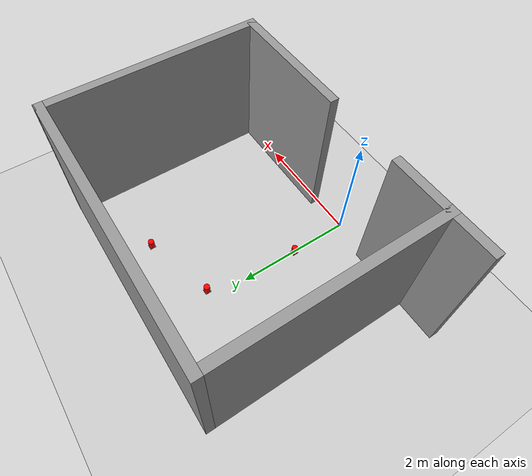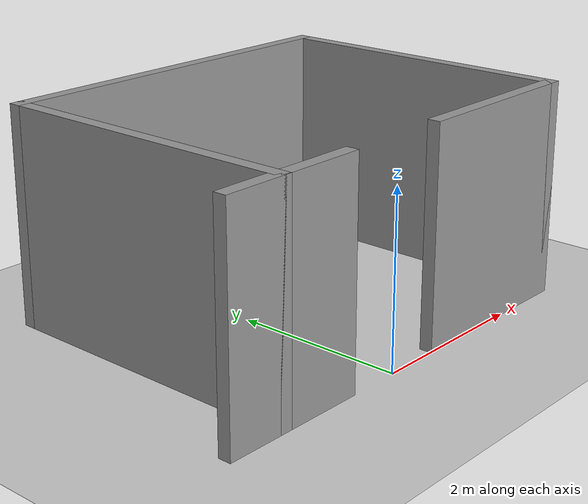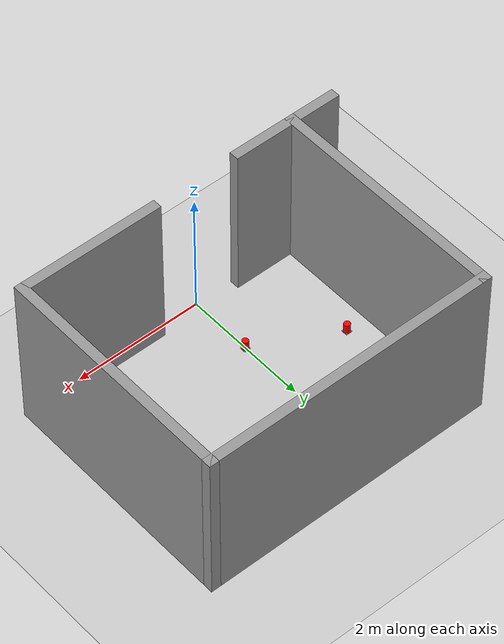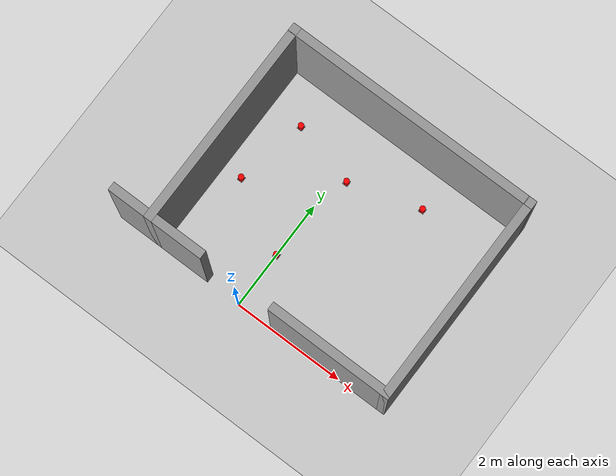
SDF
<sdf version="1.6">
 <world name="default">
  <light name="sun" type="directional">
   <pose>0 0 10 0 -0 0</pose>
   <diffuse>0.8 0.8 0.8 1</diffuse>
   <specular>0.1 0.1 0.1 1</specular>
   <attenuation>
    <range>1000</range>
    <constant>0.9</constant>
    <linear>0.01</linear>
    <quadratic>0.001</quadratic>
   </attenuation>
   <direction>-0.5 0.5 -1</direction>
  </light>
  <model name="ground_plane">
   <static>1</static>
   <link name="link">
    <collision name="collision">
     <geometry><plane><normal>0 0 1</normal><size>100 100</size></plane></geometry>
     <surface><friction><ode><mu>100</mu><mu2>50</mu2></ode></friction></surface>
    </collision>
    <visual name="visual">
     <cast_shadows>0</cast_shadows>
     <geometry><plane><normal>0 0 1</normal><size>100 100</size></plane></geometry>
     <material>
      <script><uri>file://media/materials/scripts/gazebo.material</uri><name>Gazebo/Grey</name></script>
     </material>
    </visual>
   </link>
  </model>
  <gravity>0 0 -9.8</gravity>
  <magnetic_field>6e-06 2.3e-05 -4.2e-05</magnetic_field>
  <atmosphere type="adiabatic"/>
  <physics name="default_physics" default="0" type="ode">
   <max_step_size>0.001</max_step_size>
   <real_time_factor>1</real_time_factor>
   <real_time_update_rate>1000</real_time_update_rate>
  </physics>
  <scene><ambient>0.4 0.4 0.4 1</ambient><background>0.7 0.7 0.7 1</background><shadows>1</shadows></scene>
  <spherical_coordinates>
   <surface_model>EARTH_WGS84</surface_model>
   <latitude_deg>0</latitude_deg>
   <longitude_deg>0</longitude_deg>
   <elevation>0</elevation>
   <heading_deg>0</heading_deg>
  </spherical_coordinates>
  <model name="VO_0">
   <link name="link_2">
    <pose>0 0 0.0625 0 -0 0</pose>
    <inertial>
     <mass>1</mass>
     <inertia><ixx>0.145833</ixx><ixy>0</ixy><ixz>0</ixz><iyy>0.145833</iyy><iyz>0</iyz><izz>0.125</izz></inertia>
    </inertial>
    <visual name="visual">
     <geometry><cylinder><radius>0.05</radius><length>0.15</length></cylinder></geometry>
     <material>
      <lighting>1</lighting>
      <script><uri>file://media/materials/scripts/gazebo.material</uri><name>Gazebo/Grey</name></script>
      <ambient>0.3 0.3 0.3 1</ambient>
      <diffuse>1 0 0 1</diffuse>
      <specular>0.01 0.01 0.01 1</specular>
      <emissive>0 0 0 1</emissive>
      <shader type="vertex"><normal_map>__default__</normal_map></shader>
     </material>
    </visual>
    <collision name="collision">
     <geometry><cylinder><radius>0.05</radius><length>0.15</length></cylinder></geometry>
     <surface>
      <friction>
       <ode><mu>1</mu><mu2>1</mu2><fdir1>0 0 0</fdir1><slip1>0</slip1><slip2>0</slip2></ode>
       <torsional>
        <coefficient>1</coefficient>
        <patch_radius>0</patch_radius>
        <surface_radius>0</surface_radius>
        <use_patch_radius>1</use_patch_radius>
        <ode><slip>0</slip></ode>
       </torsional>
      </friction>
      <bounce><restitution_coefficient>0</restitution_coefficient><threshold>1e+06</threshold></bounce>
      <contact>
       <collide_without_contact>0</collide_without_contact>
       <collide_without_contact_bitmask>1</collide_without_contact_bitmask>
       <collide_bitmask>1</collide_bitmask>
       <ode>
        <soft_cfm>0</soft_cfm>
        <soft_erp>0.2</soft_erp>
        <kp>1e+13</kp>
        <kd>1</kd>
        <max_vel>0.01</max_vel>
        <min_depth>0</min_depth>
       </ode>
       <bullet>
        <split_impulse>1</split_impulse>
        <split_impulse_penetration_threshold>-0.01</split_impulse_penetration_threshold>
        <soft_cfm>0</soft_cfm>
        <soft_erp>0.2</soft_erp>
        <kp>1e+13</kp>
        <kd>1</kd>
       </bullet>
      </contact>
     </surface>
    </collision>
   </link>
   <link name="link_3_clone">
    <pose>0 0 -0.0625 0 -0 0</pose>
    <inertial>
     <mass>1</mass>
     <inertia>
      <ixx>0.166667</ixx>
      <ixy>0</ixy>
      <ixz>0</ixz>
      <iyy>0.166667</iyy>
      <iyz>0</iyz>
      <izz>0.166667</izz>
     </inertia>
    </inertial>
    <visual name="visual">
     <geometry><box><size>0.1 0.1 0.1</size></box></geometry>
     <material>
      <lighting>1</lighting>
      <script><uri>file://media/materials/scripts/gazebo.material</uri><name>Gazebo/Grey</name></script>
      <ambient>0.3 0.3 0.3 1</ambient>
      <diffuse>0.7 0.7 0.7 1</diffuse>
      <specular>0.01 0.01 0.01 1</specular>
      <emissive>0 0 0 1</emissive>
      <shader type="vertex"><normal_map>__default__</normal_map></shader>
     </material>
    </visual>
    <collision name="collision">
     <geometry><box><size>0.1 0.1 0.1</size></box></geometry>
     <surface>
      <friction>
       <ode><mu>1</mu><mu2>1</mu2><fdir1>0 0 0</fdir1><slip1>0</slip1><slip2>0</slip2></ode>
       <torsional>
        <coefficient>1</coefficient>
        <patch_radius>0</patch_radius>
        <surface_radius>0</surface_radius>
        <use_patch_radius>1</use_patch_radius>
        <ode><slip>0</slip></ode>
       </torsional>
      </friction>
      <bounce><restitution_coefficient>0</restitution_coefficient><threshold>1e+06</threshold></bounce>
      <contact>
       <collide_without_contact>0</collide_without_contact>
       <collide_without_contact_bitmask>1</collide_without_contact_bitmask>
       <collide_bitmask>1</collide_bitmask>
       <ode>
        <soft_cfm>0</soft_cfm>
        <soft_erp>0.2</soft_erp>
        <kp>1e+13</kp>
        <kd>1</kd>
        <max_vel>0.01</max_vel>
        <min_depth>0</min_depth>
       </ode>
       <bullet>
        <split_impulse>1</split_impulse>
        <split_impulse_penetration_threshold>-0.01</split_impulse_penetration_threshold>
        <soft_cfm>0</soft_cfm>
        <soft_erp>0.2</soft_erp>
        <kp>1e+13</kp>
        <kd>1</kd>
       </bullet>
      </contact>
     </surface>
    </collision>
   </link>
   <static>0</static>
   <pose>-0.953065 2.90935 0.012491 0 -0 5e-06</pose>
  </model>
  <model name="VO_0_clone">
   <link name="link_2">
    <pose>0 0 0.0625 0 -0 0</pose>
    <inertial>
     <mass>1</mass>
     <inertia><ixx>0.145833</ixx><ixy>0</ixy><ixz>0</ixz><iyy>0.145833</iyy><iyz>0</iyz><izz>0.125</izz></inertia>
    </inertial>
    <visual name="visual">
     <geometry><cylinder><radius>0.05</radius><length>0.15</length></cylinder></geometry>
     <material>
      <lighting>1</lighting>
      <script><uri>file://media/materials/scripts/gazebo.material</uri><name>Gazebo/Grey</name></script>
      <ambient>0.3 0.3 0.3 1</ambient>
      <diffuse>1 0 0 1</diffuse>
      <specular>0.01 0.01 0.01 1</specular>
      <emissive>0 0 0 1</emissive>
      <shader type="vertex"><normal_map>__default__</normal_map></shader>
     </material>
    </visual>
    <collision name="collision">
     <geometry><cylinder><radius>0.05</radius><length>0.15</length></cylinder></geometry>
     <surface>
      <friction>
       <ode><mu>1</mu><mu2>1</mu2><fdir1>0 0 0</fdir1><slip1>0</slip1><slip2>0</slip2></ode>
       <torsional>
        <coefficient>1</coefficient>
        <patch_radius>0</patch_radius>
        <surface_radius>0</surface_radius>
        <use_patch_radius>1</use_patch_radius>
        <ode><slip>0</slip></ode>
       </torsional>
      </friction>
      <bounce><restitution_coefficient>0</restitution_coefficient><threshold>1e+06</threshold></bounce>
      <contact>
       <collide_without_contact>0</collide_without_contact>
       <collide_without_contact_bitmask>1</collide_without_contact_bitmask>
       <collide_bitmask>1</collide_bitmask>
       <ode>
        <soft_cfm>0</soft_cfm>
        <soft_erp>0.2</soft_erp>
        <kp>1e+13</kp>
        <kd>1</kd>
        <max_vel>0.01</max_vel>
        <min_depth>0</min_depth>
       </ode>
       <bullet>
        <split_impulse>1</split_impulse>
        <split_impulse_penetration_threshold>-0.01</split_impulse_penetration_threshold>
        <soft_cfm>0</soft_cfm>
        <soft_erp>0.2</soft_erp>
        <kp>1e+13</kp>
        <kd>1</kd>
       </bullet>
      </contact>
     </surface>
    </collision>
   </link>
   <link name="link_3_clone">
    <pose>0 0 -0.0625 0 -0 0</pose>
    <inertial>
     <mass>1</mass>
     <inertia>
      <ixx>0.166667</ixx>
      <ixy>0</ixy>
      <ixz>0</ixz>
      <iyy>0.166667</iyy>
      <iyz>0</iyz>
      <izz>0.166667</izz>
     </inertia>
    </inertial>
    <visual name="visual">
     <geometry><box><size>0.1 0.1 0.1</size></box></geometry>
     <material>
      <lighting>1</lighting>
      <script><uri>file://media/materials/scripts/gazebo.material</uri><name>Gazebo/Grey</name></script>
      <ambient>0.3 0.3 0.3 1</ambient>
      <diffuse>0.7 0.7 0.7 1</diffuse>
      <specular>0.01 0.01 0.01 1</specular>
      <emissive>0 0 0 1</emissive>
      <shader type="vertex"><normal_map>__default__</normal_map></shader>
     </material>
    </visual>
    <collision name="collision">
     <geometry><box><size>0.1 0.1 0.1</size></box></geometry>
     <surface>
      <friction>
       <ode><mu>1</mu><mu2>1</mu2><fdir1>0 0 0</fdir1><slip1>0</slip1><slip2>0</slip2></ode>
       <torsional>
        <coefficient>1</coefficient>
        <patch_radius>0</patch_radius>
        <surface_radius>0</surface_radius>
        <use_patch_radius>1</use_patch_radius>
        <ode><slip>0</slip></ode>
       </torsional>
      </friction>
      <bounce><restitution_coefficient>0</restitution_coefficient><threshold>1e+06</threshold></bounce>
      <contact>
       <collide_without_contact>0</collide_without_contact>
       <collide_without_contact_bitmask>1</collide_without_contact_bitmask>
       <collide_bitmask>1</collide_bitmask>
       <ode>
        <soft_cfm>0</soft_cfm>
        <soft_erp>0.2</soft_erp>
        <kp>1e+13</kp>
        <kd>1</kd>
        <max_vel>0.01</max_vel>
        <min_depth>0</min_depth>
       </ode>
       <bullet>
        <split_impulse>1</split_impulse>
        <split_impulse_penetration_threshold>-0.01</split_impulse_penetration_threshold>
        <soft_cfm>0</soft_cfm>
        <soft_erp>0.2</soft_erp>
        <kp>1e+13</kp>
        <kd>1</kd>
       </bullet>
      </contact>
     </surface>
    </collision>
   </link>
   <static>0</static>
   <pose>0.180904 2.62442 0.012491 0 -0 5e-06</pose>
  </model>
  <model name="VO_0_clone_0">
   <link name="link_2">
    <pose>0 0 0.0625 0 -0 0</pose>
    <inertial>
     <mass>1</mass>
     <inertia><ixx>0.145833</ixx><ixy>0</ixy><ixz>0</ixz><iyy>0.145833</iyy><iyz>0</iyz><izz>0.125</izz></inertia>
    </inertial>
    <visual name="visual">
     <geometry><cylinder><radius>0.05</radius><length>0.15</length></cylinder></geometry>
     <material>
      <lighting>1</lighting>
      <script><uri>file://media/materials/scripts/gazebo.material</uri><name>Gazebo/Grey</name></script>
      <ambient>0.3 0.3 0.3 1</ambient>
      <diffuse>1 0 0 1</diffuse>
      <specular>0.01 0.01 0.01 1</specular>
      <emissive>0 0 0 1</emissive>
      <shader type="vertex"><normal_map>__default__</normal_map></shader>
     </material>
    </visual>
    <collision name="collision">
     <geometry><cylinder><radius>0.05</radius><length>0.15</length></cylinder></geometry>
     <surface>
      <friction>
       <ode><mu>1</mu><mu2>1</mu2><fdir1>0 0 0</fdir1><slip1>0</slip1><slip2>0</slip2></ode>
       <torsional>
        <coefficient>1</coefficient>
        <patch_radius>0</patch_radius>
        <surface_radius>0</surface_radius>
        <use_patch_radius>1</use_patch_radius>
        <ode><slip>0</slip></ode>
       </torsional>
      </friction>
      <bounce><restitution_coefficient>0</restitution_coefficient><threshold>1e+06</threshold></bounce>
      <contact>
       <collide_without_contact>0</collide_without_contact>
       <collide_without_contact_bitmask>1</collide_without_contact_bitmask>
       <collide_bitmask>1</collide_bitmask>
       <ode>
        <soft_cfm>0</soft_cfm>
        <soft_erp>0.2</soft_erp>
        <kp>1e+13</kp>
        <kd>1</kd>
        <max_vel>0.01</max_vel>
        <min_depth>0</min_depth>
       </ode>
       <bullet>
        <split_impulse>1</split_impulse>
        <split_impulse_penetration_threshold>-0.01</split_impulse_penetration_threshold>
        <soft_cfm>0</soft_cfm>
        <soft_erp>0.2</soft_erp>
        <kp>1e+13</kp>
        <kd>1</kd>
       </bullet>
      </contact>
     </surface>
    </collision>
   </link>
   <link name="link_3_clone">
    <pose>0 0 -0.0625 0 -0 0</pose>
    <inertial>
     <mass>1</mass>
     <inertia>
      <ixx>0.166667</ixx>
      <ixy>0</ixy>
      <ixz>0</ixz>
      <iyy>0.166667</iyy>
      <iyz>0</iyz>
      <izz>0.166667</izz>
     </inertia>
    </inertial>
    <visual name="visual">
     <geometry><box><size>0.1 0.1 0.1</size></box></geometry>
     <material>
      <lighting>1</lighting>
      <script><uri>file://media/materials/scripts/gazebo.material</uri><name>Gazebo/Grey</name></script>
      <ambient>0.3 0.3 0.3 1</ambient>
      <diffuse>0.7 0.7 0.7 1</diffuse>
      <specular>0.01 0.01 0.01 1</specular>
      <emissive>0 0 0 1</emissive>
      <shader type="vertex"><normal_map>__default__</normal_map></shader>
     </material>
    </visual>
    <collision name="collision">
     <geometry><box><size>0.1 0.1 0.1</size></box></geometry>
     <surface>
      <friction>
       <ode><mu>1</mu><mu2>1</mu2><fdir1>0 0 0</fdir1><slip1>0</slip1><slip2>0</slip2></ode>
       <torsional>
        <coefficient>1</coefficient>
        <patch_radius>0</patch_radius>
        <surface_radius>0</surface_radius>
        <use_patch_radius>1</use_patch_radius>
        <ode><slip>0</slip></ode>
       </torsional>
      </friction>
      <bounce><restitution_coefficient>0</restitution_coefficient><threshold>1e+06</threshold></bounce>
      <contact>
       <collide_without_contact>0</collide_without_contact>
       <collide_without_contact_bitmask>1</collide_without_contact_bitmask>
       <collide_bitmask>1</collide_bitmask>
       <ode>
        <soft_cfm>0</soft_cfm>
        <soft_erp>0.2</soft_erp>
        <kp>1e+13</kp>
        <kd>1</kd>
        <max_vel>0.01</max_vel>
        <min_depth>0</min_depth>
       </ode>
       <bullet>
        <split_impulse>1</split_impulse>
        <split_impulse_penetration_threshold>-0.01</split_impulse_penetration_threshold>
        <soft_cfm>0</soft_cfm>
        <soft_erp>0.2</soft_erp>
        <kp>1e+13</kp>
        <kd>1</kd>
       </bullet>
      </contact>
     </surface>
    </collision>
   </link>
   <static>0</static>
   <pose>1.42565 3 0.012491 0 -0 5e-06</pose>
  </model>
  <model name="VO_0_clone_1">
   <link name="link_2">
    <pose>0 0 0.0625 0 -0 0</pose>
    <inertial>
     <mass>1</mass>
     <inertia><ixx>0.145833</ixx><ixy>0</ixy><ixz>0</ixz><iyy>0.145833</iyy><iyz>0</iyz><izz>0.125</izz></inertia>
    </inertial>
    <visual name="visual">
     <geometry><cylinder><radius>0.05</radius><length>0.15</length></cylinder></geometry>
     <material>
      <lighting>1</lighting>
      <script><uri>file://media/materials/scripts/gazebo.material</uri><name>Gazebo/Grey</name></script>
      <ambient>0.3 0.3 0.3 1</ambient>
      <diffuse>1 0 0 1</diffuse>
      <specular>0.01 0.01 0.01 1</specular>
      <emissive>0 0 0 1</emissive>
      <shader type="vertex"><normal_map>__default__</normal_map></shader>
     </material>
    </visual>
    <collision name="collision">
     <geometry><cylinder><radius>0.05</radius><length>0.15</length></cylinder></geometry>
     <surface>
      <friction>
       <ode><mu>1</mu><mu2>1</mu2><fdir1>0 0 0</fdir1><slip1>0</slip1><slip2>0</slip2></ode>
       <torsional>
        <coefficient>1</coefficient>
        <patch_radius>0</patch_radius>
        <surface_radius>0</surface_radius>
        <use_patch_radius>1</use_patch_radius>
        <ode><slip>0</slip></ode>
       </torsional>
      </friction>
      <bounce><restitution_coefficient>0</restitution_coefficient><threshold>1e+06</threshold></bounce>
      <contact>
       <collide_without_contact>0</collide_without_contact>
       <collide_without_contact_bitmask>1</collide_without_contact_bitmask>
       <collide_bitmask>1</collide_bitmask>
       <ode>
        <soft_cfm>0</soft_cfm>
        <soft_erp>0.2</soft_erp>
        <kp>1e+13</kp>
        <kd>1</kd>
        <max_vel>0.01</max_vel>
        <min_depth>0</min_depth>
       </ode>
       <bullet>
        <split_impulse>1</split_impulse>
        <split_impulse_penetration_threshold>-0.01</split_impulse_penetration_threshold>
        <soft_cfm>0</soft_cfm>
        <soft_erp>0.2</soft_erp>
        <kp>1e+13</kp>
        <kd>1</kd>
       </bullet>
      </contact>
     </surface>
    </collision>
   </link>
   <link name="link_3_clone">
    <pose>0 0 -0.0625 0 -0 0</pose>
    <inertial>
     <mass>1</mass>
     <inertia>
      <ixx>0.166667</ixx>
      <ixy>0</ixy>
      <ixz>0</ixz>
      <iyy>0.166667</iyy>
      <iyz>0</iyz>
      <izz>0.166667</izz>
     </inertia>
    </inertial>
    <visual name="visual">
     <geometry><box><size>0.1 0.1 0.1</size></box></geometry>
     <material>
      <lighting>1</lighting>
      <script><uri>file://media/materials/scripts/gazebo.material</uri><name>Gazebo/Grey</name></script>
      <ambient>0.3 0.3 0.3 1</ambient>
      <diffuse>0.7 0.7 0.7 1</diffuse>
      <specular>0.01 0.01 0.01 1</specular>
      <emissive>0 0 0 1</emissive>
      <shader type="vertex"><normal_map>__default__</normal_map></shader>
     </material>
    </visual>
    <collision name="collision">
     <geometry><box><size>0.1 0.1 0.1</size></box></geometry>
     <surface>
      <friction>
       <ode><mu>1</mu><mu2>1</mu2><fdir1>0 0 0</fdir1><slip1>0</slip1><slip2>0</slip2></ode>
       <torsional>
        <coefficient>1</coefficient>
        <patch_radius>0</patch_radius>
        <surface_radius>0</surface_radius>
        <use_patch_radius>1</use_patch_radius>
        <ode><slip>0</slip></ode>
       </torsional>
      </friction>
      <bounce><restitution_coefficient>0</restitution_coefficient><threshold>1e+06</threshold></bounce>
      <contact>
       <collide_without_contact>0</collide_without_contact>
       <collide_without_contact_bitmask>1</collide_without_contact_bitmask>
       <collide_bitmask>1</collide_bitmask>
       <ode>
        <soft_cfm>0</soft_cfm>
        <soft_erp>0.2</soft_erp>
        <kp>1e+13</kp>
        <kd>1</kd>
        <max_vel>0.01</max_vel>
        <min_depth>0</min_depth>
       </ode>
       <bullet>
        <split_impulse>1</split_impulse>
        <split_impulse_penetration_threshold>-0.01</split_impulse_penetration_threshold>
        <soft_cfm>0</soft_cfm>
        <soft_erp>0.2</soft_erp>
        <kp>1e+13</kp>
        <kd>1</kd>
       </bullet>
      </contact>
     </surface>
    </collision>
   </link>
   <static>0</static>
   <pose>0 1 0.012491 0 -0 5e-06</pose>
  </model>
  <model name="VO_0_clone_2">
   <link name="link_2">
    <pose>0 0 0.0625 0 -0 0</pose>
    <inertial>
     <mass>1</mass>
     <inertia><ixx>0.145833</ixx><ixy>0</ixy><ixz>0</ixz><iyy>0.145833</iyy><iyz>0</iyz><izz>0.125</izz></inertia>
    </inertial>
    <visual name="visual">
     <geometry><cylinder><radius>0.05</radius><length>0.15</length></cylinder></geometry>
     <material>
      <lighting>1</lighting>
      <script><uri>file://media/materials/scripts/gazebo.material</uri><name>Gazebo/Grey</name></script>
      <ambient>0.3 0.3 0.3 1</ambient>
      <diffuse>1 0 0 1</diffuse>
      <specular>0.01 0.01 0.01 1</specular>
      <emissive>0 0 0 1</emissive>
      <shader type="vertex"><normal_map>__default__</normal_map></shader>
     </material>
    </visual>
    <collision name="collision">
     <geometry><cylinder><radius>0.05</radius><length>0.15</length></cylinder></geometry>
     <surface>
      <friction>
       <ode><mu>1</mu><mu2>1</mu2><fdir1>0 0 0</fdir1><slip1>0</slip1><slip2>0</slip2></ode>
       <torsional>
        <coefficient>1</coefficient>
        <patch_radius>0</patch_radius>
        <surface_radius>0</surface_radius>
        <use_patch_radius>1</use_patch_radius>
        <ode><slip>0</slip></ode>
       </torsional>
      </friction>
      <bounce><restitution_coefficient>0</restitution_coefficient><threshold>1e+06</threshold></bounce>
      <contact>
       <collide_without_contact>0</collide_without_contact>
       <collide_without_contact_bitmask>1</collide_without_contact_bitmask>
       <collide_bitmask>1</collide_bitmask>
       <ode>
        <soft_cfm>0</soft_cfm>
        <soft_erp>0.2</soft_erp>
        <kp>1e+13</kp>
        <kd>1</kd>
        <max_vel>0.01</max_vel>
        <min_depth>0</min_depth>
       </ode>
       <bullet>
        <split_impulse>1</split_impulse>
        <split_impulse_penetration_threshold>-0.01</split_impulse_penetration_threshold>
        <soft_cfm>0</soft_cfm>
        <soft_erp>0.2</soft_erp>
        <kp>1e+13</kp>
        <kd>1</kd>
       </bullet>
      </contact>
     </surface>
    </collision>
   </link>
   <link name="link_3_clone">
    <pose>0 0 -0.0625 0 -0 0</pose>
    <inertial>
     <mass>1</mass>
     <inertia>
      <ixx>0.166667</ixx>
      <ixy>0</ixy>
      <ixz>0</ixz>
      <iyy>0.166667</iyy>
      <iyz>0</iyz>
      <izz>0.166667</izz>
     </inertia>
    </inertial>
    <visual name="visual">
     <geometry><box><size>0.1 0.1 0.1</size></box></geometry>
     <material>
      <lighting>1</lighting>
      <script><uri>file://media/materials/scripts/gazebo.material</uri><name>Gazebo/Grey</name></script>
      <ambient>0.3 0.3 0.3 1</ambient>
      <diffuse>0.7 0.7 0.7 1</diffuse>
      <specular>0.01 0.01 0.01 1</specular>
      <emissive>0 0 0 1</emissive>
      <shader type="vertex"><normal_map>__default__</normal_map></shader>
     </material>
    </visual>
    <collision name="collision">
     <geometry><box><size>0.1 0.1 0.1</size></box></geometry>
     <surface>
      <friction>
       <ode><mu>1</mu><mu2>1</mu2><fdir1>0 0 0</fdir1><slip1>0</slip1><slip2>0</slip2></ode>
       <torsional>
        <coefficient>1</coefficient>
        <patch_radius>0</patch_radius>
        <surface_radius>0</surface_radius>
        <use_patch_radius>1</use_patch_radius>
        <ode><slip>0</slip></ode>
       </torsional>
      </friction>
      <bounce><restitution_coefficient>0</restitution_coefficient><threshold>1e+06</threshold></bounce>
      <contact>
       <collide_without_contact>0</collide_without_contact>
       <collide_without_contact_bitmask>1</collide_without_contact_bitmask>
       <collide_bitmask>1</collide_bitmask>
       <ode>
        <soft_cfm>0</soft_cfm>
        <soft_erp>0.2</soft_erp>
        <kp>1e+13</kp>
        <kd>1</kd>
        <max_vel>0.01</max_vel>
        <min_depth>0</min_depth>
       </ode>
       <bullet>
        <split_impulse>1</split_impulse>
        <split_impulse_penetration_threshold>-0.01</split_impulse_penetration_threshold>
        <soft_cfm>0</soft_cfm>
        <soft_erp>0.2</soft_erp>
        <kp>1e+13</kp>
        <kd>1</kd>
       </bullet>
      </contact>
     </surface>
    </collision>
   </link>
   <static>0</static>
   <pose>-1.21143 1.65678 0.012491 0 -0 5e-06</pose>
  </model>
  <model name="testfield_0">
   <link name="Wall_0">
    <pose>-2.225 0 0 0 0 -1.5708</pose>
    <visual name="Wall_0_Visual">
     <pose>0 0 1.25 0 -0 0</pose>
     <geometry><box><size>3.75 0.15 2.5</size></box></geometry>
     <material>
      <script><uri>file://media/materials/scripts/gazebo.material</uri><name>Gazebo/Grey</name></script>
      <ambient>1 1 1 1</ambient>
      <diffuse>0.7 0.7 0.7 1</diffuse>
      <specular>0.01 0.01 0.01 1</specular>
      <emissive>0 0 0 1</emissive>
     </material>
    </visual>
    <collision name="Wall_0_Collision">
     <pose>0 0 1.25 0 -0 0</pose>
     <geometry><box><size>3.75 0.15 2.5</size></box></geometry>
     <surface>
      <friction>
       <ode><mu>1</mu><mu2>1</mu2><fdir1>0 0 0</fdir1><slip1>0</slip1><slip2>0</slip2></ode>
       <torsional>
        <coefficient>1</coefficient>
        <patch_radius>0</patch_radius>
        <surface_radius>0</surface_radius>
        <use_patch_radius>1</use_patch_radius>
        <ode><slip>0</slip></ode>
       </torsional>
      </friction>
      <bounce><restitution_coefficient>0</restitution_coefficient><threshold>1e+06</threshold></bounce>
      <contact>
       <collide_without_contact>0</collide_without_contact>
       <collide_without_contact_bitmask>1</collide_without_contact_bitmask>
       <collide_bitmask>1</collide_bitmask>
       <ode>
        <soft_cfm>0</soft_cfm>
        <soft_erp>0.2</soft_erp>
        <kp>1e+13</kp>
        <kd>1</kd>
        <max_vel>0.01</max_vel>
        <min_depth>0</min_depth>
       </ode>
       <bullet>
        <split_impulse>1</split_impulse>
        <split_impulse_penetration_threshold>-0.01</split_impulse_penetration_threshold>
        <soft_cfm>0</soft_cfm>
        <soft_erp>0.2</soft_erp>
        <kp>1e+13</kp>
        <kd>1</kd>
       </bullet>
      </contact>
     </surface>
    </collision>
   </link>
   <link name="Wall_1">
    <pose>-2.09639 -1.8 0 0 -0 0</pose>
    <visual name="Wall_1_Visual">
     <pose>0 0 1.25 0 -0 0</pose>
     <geometry><box><size>1.75 0.15 2.5</size></box></geometry>
     <material>
      <script><uri>file://media/materials/scripts/gazebo.material</uri><name>Gazebo/Grey</name></script>
      <ambient>1 1 1 1</ambient>
      <diffuse>0.7 0.7 0.7 1</diffuse>
      <specular>0.01 0.01 0.01 1</specular>
      <emissive>0 0 0 1</emissive>
     </material>
    </visual>
    <collision name="Wall_1_Collision">
     <pose>0 0 1.25 0 -0 0</pose>
     <geometry><box><size>1.75 0.15 2.5</size></box></geometry>
     <surface>
      <friction>
       <ode><mu>1</mu><mu2>1</mu2><fdir1>0 0 0</fdir1><slip1>0</slip1><slip2>0</slip2></ode>
       <torsional>
        <coefficient>1</coefficient>
        <patch_radius>0</patch_radius>
        <surface_radius>0</surface_radius>
        <use_patch_radius>1</use_patch_radius>
        <ode><slip>0</slip></ode>
       </torsional>
      </friction>
      <bounce><restitution_coefficient>0</restitution_coefficient><threshold>1e+06</threshold></bounce>
      <contact>
       <collide_without_contact>0</collide_without_contact>
       <collide_without_contact_bitmask>1</collide_without_contact_bitmask>
       <collide_bitmask>1</collide_bitmask>
       <ode>
        <soft_cfm>0</soft_cfm>
        <soft_erp>0.2</soft_erp>
        <kp>1e+13</kp>
        <kd>1</kd>
        <max_vel>0.01</max_vel>
        <min_depth>0</min_depth>
       </ode>
       <bullet>
        <split_impulse>1</split_impulse>
        <split_impulse_penetration_threshold>-0.01</split_impulse_penetration_threshold>
        <soft_cfm>0</soft_cfm>
        <soft_erp>0.2</soft_erp>
        <kp>1e+13</kp>
        <kd>1</kd>
       </bullet>
      </contact>
     </surface>
    </collision>
   </link>
   <link name="Wall_3">
    <pose>1.175 -1.8 0 0 -0 0</pose>
    <visual name="Wall_3_Visual">
     <pose>0 0 1.25 0 -0 0</pose>
     <geometry><box><size>2.25 0.15 2.5</size></box></geometry>
     <material>
      <script><uri>file://media/materials/scripts/gazebo.material</uri><name>Gazebo/Grey</name></script>
      <ambient>1 1 1 1</ambient>
      <diffuse>0.7 0.7 0.7 1</diffuse>
      <specular>0.01 0.01 0.01 1</specular>
      <emissive>0 0 0 1</emissive>
     </material>
    </visual>
    <collision name="Wall_3_Collision">
     <pose>0 0 1.25 0 -0 0</pose>
     <geometry><box><size>2.25 0.15 2.5</size></box></geometry>
     <surface>
      <friction>
       <ode><mu>1</mu><mu2>1</mu2><fdir1>0 0 0</fdir1><slip1>0</slip1><slip2>0</slip2></ode>
       <torsional>
        <coefficient>1</coefficient>
        <patch_radius>0</patch_radius>
        <surface_radius>0</surface_radius>
        <use_patch_radius>1</use_patch_radius>
        <ode><slip>0</slip></ode>
       </torsional>
      </friction>
      <bounce><restitution_coefficient>0</restitution_coefficient><threshold>1e+06</threshold></bounce>
      <contact>
       <collide_without_contact>0</collide_without_contact>
       <collide_without_contact_bitmask>1</collide_without_contact_bitmask>
       <collide_bitmask>1</collide_bitmask>
       <ode>
        <soft_cfm>0</soft_cfm>
        <soft_erp>0.2</soft_erp>
        <kp>1e+13</kp>
        <kd>1</kd>
        <max_vel>0.01</max_vel>
        <min_depth>0</min_depth>
       </ode>
       <bullet>
        <split_impulse>1</split_impulse>
        <split_impulse_penetration_threshold>-0.01</split_impulse_penetration_threshold>
        <soft_cfm>0</soft_cfm>
        <soft_erp>0.2</soft_erp>
        <kp>1e+13</kp>
        <kd>1</kd>
       </bullet>
      </contact>
     </surface>
    </collision>
   </link>
   <link name="Wall_4">
    <pose>2.225 0 0 0 -0 1.5708</pose>
    <visual name="Wall_4_Visual">
     <pose>0 0 1.25 0 -0 0</pose>
     <geometry><box><size>3.75 0.15 2.5</size></box></geometry>
     <material>
      <script><uri>file://media/materials/scripts/gazebo.material</uri><name>Gazebo/Grey</name></script>
      <ambient>1 1 1 1</ambient>
      <diffuse>0.7 0.7 0.7 1</diffuse>
      <specular>0.01 0.01 0.01 1</specular>
      <emissive>0 0 0 1</emissive>
     </material>
    </visual>
    <collision name="Wall_4_Collision">
     <pose>0 0 1.25 0 -0 0</pose>
     <geometry><box><size>3.75 0.15 2.5</size></box></geometry>
     <surface>
      <friction>
       <ode><mu>1</mu><mu2>1</mu2><fdir1>0 0 0</fdir1><slip1>0</slip1><slip2>0</slip2></ode>
       <torsional>
        <coefficient>1</coefficient>
        <patch_radius>0</patch_radius>
        <surface_radius>0</surface_radius>
        <use_patch_radius>1</use_patch_radius>
        <ode><slip>0</slip></ode>
       </torsional>
      </friction>
      <bounce><restitution_coefficient>0</restitution_coefficient><threshold>1e+06</threshold></bounce>
      <contact>
       <collide_without_contact>0</collide_without_contact>
       <collide_without_contact_bitmask>1</collide_without_contact_bitmask>
       <collide_bitmask>1</collide_bitmask>
       <ode>
        <soft_cfm>0</soft_cfm>
        <soft_erp>0.2</soft_erp>
        <kp>1e+13</kp>
        <kd>1</kd>
        <max_vel>0.01</max_vel>
        <min_depth>0</min_depth>
       </ode>
       <bullet>
        <split_impulse>1</split_impulse>
        <split_impulse_penetration_threshold>-0.01</split_impulse_penetration_threshold>
        <soft_cfm>0</soft_cfm>
        <soft_erp>0.2</soft_erp>
        <kp>1e+13</kp>
        <kd>1</kd>
       </bullet>
      </contact>
     </surface>
    </collision>
   </link>
   <link name="Wall_5">
    <pose>0 1.8 0 0 -0 3.14159</pose>
    <visual name="Wall_5_Visual">
     <pose>0 0 1.25 0 -0 0</pose>
     <geometry><box><size>4.6 0.15 2.5</size></box></geometry>
     <material>
      <script><uri>file://media/materials/scripts/gazebo.material</uri><name>Gazebo/Grey</name></script>
      <ambient>1 1 1 1</ambient>
      <diffuse>0.7 0.7 0.7 1</diffuse>
      <specular>0.01 0.01 0.01 1</specular>
      <emissive>0 0 0 1</emissive>
     </material>
    </visual>
    <collision name="Wall_5_Collision">
     <pose>0 0 1.25 0 -0 0</pose>
     <geometry><box><size>4.6 0.15 2.5</size></box></geometry>
     <surface>
      <friction>
       <ode><mu>1</mu><mu2>1</mu2><fdir1>0 0 0</fdir1><slip1>0</slip1><slip2>0</slip2></ode>
       <torsional>
        <coefficient>1</coefficient>
        <patch_radius>0</patch_radius>
        <surface_radius>0</surface_radius>
        <use_patch_radius>1</use_patch_radius>
        <ode><slip>0</slip></ode>
       </torsional>
      </friction>
      <bounce><restitution_coefficient>0</restitution_coefficient><threshold>1e+06</threshold></bounce>
      <contact>
       <collide_without_contact>0</collide_without_contact>
       <collide_without_contact_bitmask>1</collide_without_contact_bitmask>
       <collide_bitmask>1</collide_bitmask>
       <ode>
        <soft_cfm>0</soft_cfm>
        <soft_erp>0.2</soft_erp>
        <kp>1e+13</kp>
        <kd>1</kd>
        <max_vel>0.01</max_vel>
        <min_depth>0</min_depth>
       </ode>
       <bullet>
        <split_impulse>1</split_impulse>
        <split_impulse_penetration_threshold>-0.01</split_impulse_penetration_threshold>
        <soft_cfm>0</soft_cfm>
        <soft_erp>0.2</soft_erp>
        <kp>1e+13</kp>
        <kd>1</kd>
       </bullet>
      </contact>
     </surface>
    </collision>
   </link>
   <static>1</static>
   <pose>0.6061 1.86402 0 0 -0 0</pose>
  </model>
 </world>
</sdf>
